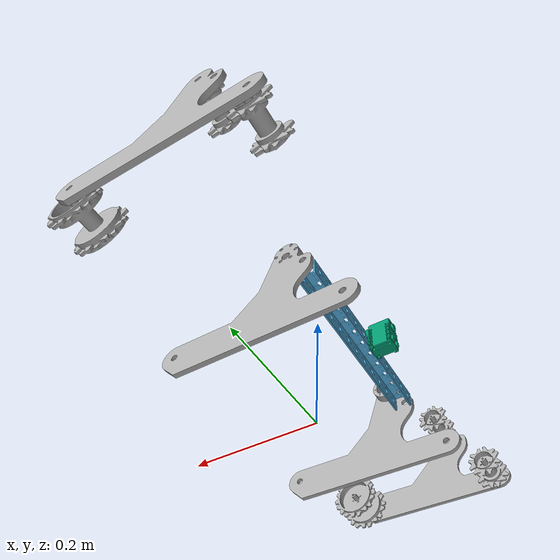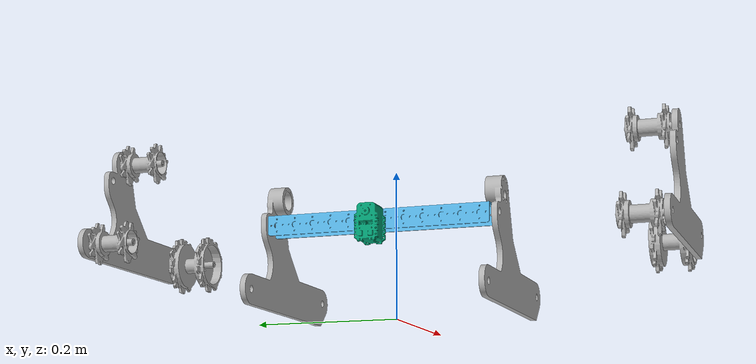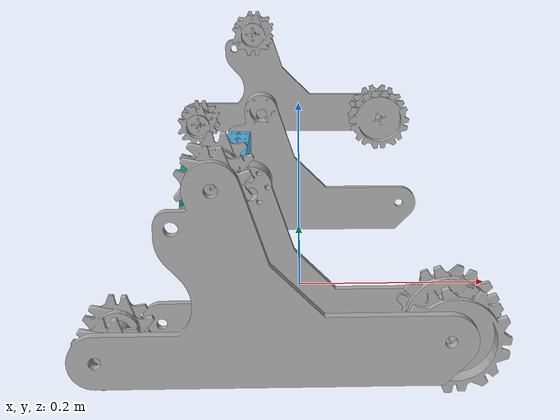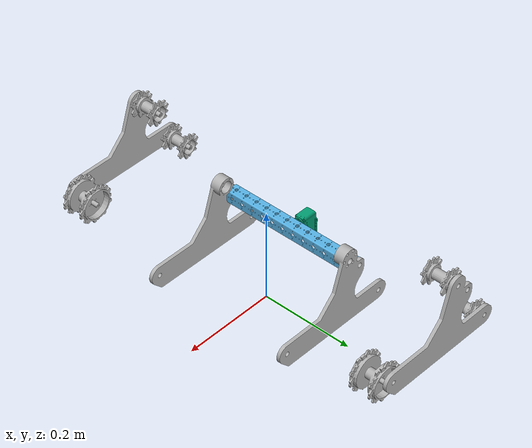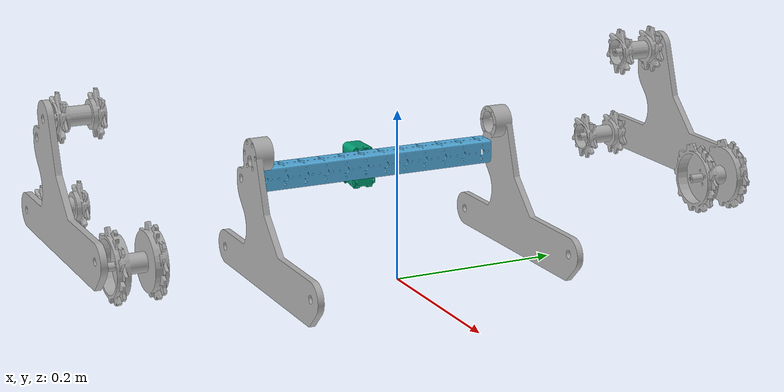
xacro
<?xml version="1.0" ?>
<robot name="aaly" xmlns:xacro="http://ros.org/wiki/xacro">

  <joint name="fixed" type="floating">
      <parent link="world"/>
      <child link="aaly__base_link"/>
  </joint>

  <joint name="aaly__j1" type="revolute">
    <parent link="aaly__base_link"/>
    <child link="aaly__motor1"/>
    <origin rpy="0 0 0" xyz="-0.107 0.0 0.12427"/>
    <axis xyz="1 0 0"/>

    <limit effort="1.5" velocity="1" lower="0" upper="5.235987755982989"/>

    <dynamics damping="5" friction="0.1"/>
  </joint>

  <joint name="aaly__Left_Track_Side_joint" type="fixed">
    <parent link="aaly__base_link"/>
    <child link="aaly__Left_Side_Track_Support"/>
    <origin rpy="0 0 0" xyz="-0.01373 -0.15812 0.06562"/>
    <axis xyz="0 0 0"/>
    <limit effort="0" lower="0" upper="0" velocity="0"/>
  </joint>

  <joint name="aaly__Right_Track_Side_joint" type="fixed">
    <parent link="aaly__base_link"/>
    <child link="aaly__Right_Side_Track_Support"/>
    <origin rpy="0 0 0" xyz="-0.01373 0.15812 0.07062"/>
    <axis xyz="0 0 0"/>
    <limit effort="0" lower="0" upper="0" velocity="0"/>
  </joint>

  <joint name="aaly__drum_joint1" type="continuous">
    <parent link="aaly__Left_Side_Track_Support"/>
    <child link="aaly__drum1"/>
    <origin rpy="1.57079632679 0 0" xyz="-0.1228385 -0.19612 0.030"/>
    <axis xyz="0 1 0"/>
  </joint>

  <joint name="aaly__drum_joint2" type="continuous">
    <parent link="aaly__Right_Side_Track_Support"/>
    <child link="aaly__drum2"/>
    <origin rpy="1.57079632679 0 0" xyz="-0.1228385 0.19612 0.030"/>
    <axis xyz="0 1 0"/>
    <limit effort="0" lower="-1e+16" upper="1e+16" velocity="2"/>
  </joint>

  <joint name="aaly__drum_joint3" type="continuous">
    <parent link="aaly__Left_Side_Track_Support"/>
    <child link="aaly__drum3"/>
    <origin rpy="1.57079632679 0 0" xyz="0.1248385 -0.19612 0.037625"/>
    <axis xyz="0 1 0"/>
    <limit effort="0" lower="-1e+16" upper="1e+16" velocity="2"/>
  </joint>

  <joint name="aaly__drum_joint4" type="continuous">
    <parent link="aaly__Right_Side_Track_Support"/>
    <child link="aaly__drum4"/>
    <origin rpy="1.57079632679 0 0" xyz="0.1248385 0.19612 0.037625"/>
    <axis xyz="0 1 0"/>
    <limit effort="0" lower="-1e+16" upper="1e+16" velocity="2"/>
  </joint>

  <joint name="aaly__drum_joint5" type="continuous">
    <parent link="aaly__Left_Side_Track_Support"/>
    <child link="aaly__drum5"/>
    <origin rpy="1.57079632679 0 0" xyz="-0.0460507 -0.19612 0.154342"/>
    <axis xyz="0 1 0"/>
    <limit effort="0" lower="-1e+16" upper="1e+16" velocity="2"/>
  </joint>

  <joint name="aaly__drum_joint6" type="continuous">
    <parent link="aaly__Right_Side_Track_Support"/>
    <child link="aaly__drum6"/>
    <origin rpy="1.57079632679 0 0" xyz="-0.0460507 0.19612 0.154342"/>
    <axis xyz="0 1 0"/>
    <limit effort="0" lower="-1e+16" upper="1e+16" velocity="2"/>
  </joint>

  <joint name="aaly__Left_Side_Track_Cover_joint" type="fixed">
    <parent link="aaly__Left_Side_Track_Support"/>
    <child link="aaly__Left_Side_Track_Cover"/>
    <origin rpy="0 0 0" xyz="-0.0134385 -0.23112 0.061125"/>
    <axis xyz="0 0 0"/>
    <limit effort="0" lower="0" upper="0" velocity="0"/>
  </joint>

  <joint name="aaly__Right_Side_Track_Cover_joint" type="fixed">
    <parent link="aaly__Right_Side_Track_Support"/>
    <child link="aaly__Right_Side_Track_Cover"/>
    <origin rpy="0 0 0" xyz="-0.0134385 0.23112 0.061125"/>
    <axis xyz="0 0 0"/>
    <limit effort="0" lower="0" upper="0" velocity="0"/>
  </joint>

  <!-- Used for fixing robot to Gazebo 'base_link' -->
  <link name="world"/>

  <link name="aaly__base_link">
    <inertial>
      <mass value="0.36"/>
      <origin rpy="0 0 0" xyz="0 0 0"/>
      <inertia ixx="0.0028086383999999997" ixy="0.0" ixz="0.0" iyy="4.3094400000000005e-05" iyz="0.0" izz="0.0028086383999999997"/>
    </inertial>
    <collision name="aaly__base_link_collision">
      <origin rpy="0 0 0" xyz="-0.07 0 0.12427"/>
      <geometry>
        <box size="0.026988 0.3000 0.026988"/>
      </geometry>
    </collision>
    <visual name="aaly__base_link_visual">
      <origin rpy="0 0 0" xyz="-0.07 0 0.12427"/>
      <geometry>
        <mesh filename="package://aaly_urdf/meshes/Horizontal_Support_Bar_ASB-512.dae" scale="1.0 1.0 1.0"/>
      </geometry>
    </visual>
  </link>

  <link name="aaly__motor1">
    <inertial>
        <mass value="0.05" />
        <inertia ixx="0.04" ixy="0.0" ixz="0.0" iyy="0.04" iyz="0.0" izz="0.04"/>
    </inertial>
    <collision name="aaly__motor1_collision">
      <origin rpy="0 0 0" xyz="0 0 0"/>
      <geometry>
        <box size="0.04 0.032 0.050"/>
      </geometry>
    </collision>
    <visual name="aaly__motor1_visual">
      <origin rpy="0 0 0" xyz="0 0 0"/>
      <geometry>
        <mesh filename="package://aaly_urdf/meshes/AX12-A_origin_same_as_center_of_mass.stl" scale="1.0 1.0 1.0"/>
      </geometry>
    </visual>
  </link>

  <link name="aaly__Left_Side_Track_Support">
    <inertial>
      <mass value="0.01"/>
      <origin rpy="0 0 0" xyz="0 0 0"/>
      <inertia ixx="0.001" ixy="0" ixz="0" iyy="0.001" iyz="0" izz="0.001"/>
    </inertial>
    <collision name="aaly__Left_Side_Track_Support_collision">
      <origin rpy="0 0 0" xyz="0 0 0.015"/>
      <geometry>
        <mesh filename="package://aaly_urdf/meshes/Track_Support_Collision_Mesh.dae" scale="1.0 1.0 1.0"/>
      </geometry>
    </collision>
    <visual name="aaly__Left_Side_Track_Support_visual">
      <origin rpy="0 0 0" xyz="0 0 0"/>
      <geometry>
        <mesh filename="package://aaly_urdf/meshes/Track_Support_Left_Side.dae" scale="1.0 1.0 1.0"/>
      </geometry>
    </visual>
  </link>

  <link name="aaly__Right_Side_Track_Support">
    <inertial>
      <mass value="0.01"/>
      <origin rpy="0 0 0" xyz="0 0 0"/>
      <inertia ixx="0.001" ixy="0" ixz="0" iyy="0.001" iyz="0" izz="0.001"/>
    </inertial>
    <collision name="aaly__Right_Side_Track_Support_collision">
      <origin rpy="0 0 0" xyz="0 0 0.015"/>
      <geometry>
        <mesh filename="package://aaly_urdf/meshes/Track_Support_Collision_Mesh.dae" scale="1.0 1.0 1.0"/>
      </geometry>
    </collision>
    <visual name="aaly__Left_Side_Track_Support_visual">
      <origin rpy="0 0 0" xyz="0 0 0"/>
      <geometry>
        <mesh filename="package://aaly_urdf/meshes/Track_Support_Right_Side.dae" scale="1.0 1.0 1.0"/>
      </geometry>
    </visual>
  </link>

  <link name="aaly__drum1">
    <inertial>
      <mass value="0.1"/>
      <origin rpy="0 0 0" xyz="0 0 0"/>
      <inertia ixx="4.0003370625000006e-05" ixy="0.0" ixz="0.0" iyy="4.0003370625000006e-05" iyz="0.0" izz="3.624778125000001e-05"/>
    </inertial>
    <collision name="aaly__drum1_collision">
      <origin rpy="0 0 0" xyz="0 0 0"/>
      <geometry>
        <cylinder length="0.05124" radius="0.026925"/>
      </geometry>
    </collision>
    <visual name="aaly__drum1_visual">
      <origin rpy="0 0 0" xyz="0 0 0"/>
      <geometry>
        <mesh filename="package://aaly_urdf/meshes/Lynx_Sproket6in_Hub13.dae" scale="1.0 1.0 1.0"/>
      </geometry>
    </visual>
  </link>

  <link name="aaly__drum2">
    <inertial>
      <mass value="0.1"/>
      <origin rpy="0 0 0" xyz="0 0 0"/>
      <inertia ixx="4.0003370625000006e-05" ixy="0.0" ixz="0.0" iyy="4.0003370625000006e-05" iyz="0.0" izz="3.624778125000001e-05"/>
    </inertial>
    <collision name="aaly__drum2_collision">
      <origin rpy="0 0 0" xyz="0 0 0"/>
      <geometry>
        <cylinder length="0.05124" radius="0.026525"/>
      </geometry>
    </collision>
    <visual name="aaly__drum2_visual">
      <origin rpy="0 0 0" xyz="0 0 0"/>
      <geometry>
        <mesh filename="package://aaly_urdf/meshes/Lynx_Sproket6in_Hub13.dae" scale="1.0 1.0 1.0"/>
      </geometry>
    </visual>
  </link>

  <link name="aaly__drum3">
    <inertial>
      <mass value="0.15"/>
      <origin rpy="0 0 0" xyz="0 0 0"/>
      <inertia ixx="5.5414245624999996e-05" ixy="0.0" ixz="0.0" iyy="5.5414245624999996e-05" iyz="0.0" izz="0.000100604296875"/>
    </inertial>
    <collision name="aaly__drum3_collision">
      <origin rpy="0 0 0" xyz="0 0 0"/>
      <geometry>
        <cylinder length="0.05124" radius="0.035625"/>
      </geometry>
    </collision>
    <visual name="aaly__drum3_visual">
      <origin rpy="0 0 0" xyz="0 0 0"/>
      <geometry>
        <mesh filename="package://aaly_urdf/meshes/Lynx_Sproket9in_Hub13.dae" scale="1.0 1.0 1.0"/>
      </geometry>
    </visual>
  </link>

  <link name="aaly__drum4">
    <inertial>
      <mass value="0.15"/>
      <origin rpy="0 0 0" xyz="0 0 0"/>
      <inertia ixx="5.5414245624999996e-05" ixy="0.0" ixz="0.0" iyy="5.5414245624999996e-05" iyz="0.0" izz="0.000100604296875"/>
    </inertial>
    <collision name="aaly__drum4_collision">
      <origin rpy="0 0 0" xyz="0 0 0"/>
      <geometry>
        <cylinder length="0.05124" radius="0.035625"/>
      </geometry>
    </collision>
    <visual name="aaly__drum4_visual">
      <origin rpy="0 0 0" xyz="0 0 0"/>
      <geometry>
        <mesh filename="package://aaly_urdf/meshes/Lynx_Sproket9in_Hub13.dae" scale="1.0 1.0 1.0"/>
      </geometry>
    </visual>
  </link>

  <link name="aaly__drum5">
    <inertial>
      <mass value="0.1"/>
      <origin rpy="0 0 0" xyz="0 0 0"/>
      <inertia ixx="4.0003370625000006e-05" ixy="0.0" ixz="0.0" iyy="4.0003370625000006e-05" iyz="0.0" izz="3.624778125000001e-05"/>
    </inertial>
    <collision name="aaly__drum5_collision">
      <origin rpy="0 0 0" xyz="0 0 0"/>
      <geometry>
        <cylinder length="0.05124" radius="0.026525"/>
      </geometry>
    </collision>
    <visual name="aaly__drum5_visual">
      <origin rpy="0 0 0" xyz="0 0 0"/>
      <geometry>
        <mesh filename="package://aaly_urdf/meshes/Lynx_Sproket6in_Hub13.dae" scale="1.0 1.0 1.0"/>
      </geometry>
    </visual>
  </link>

  <link name="aaly__drum6">
    <inertial>
      <mass value="0.1"/>
      <origin rpy="0 0 0" xyz="0 0 0"/>
      <inertia ixx="4.0003370625000006e-05" ixy="0.0" ixz="0.0" iyy="4.0003370625000006e-05" iyz="0.0" izz="3.624778125000001e-05"/>
    </inertial>
    <collision name="aaly__drum6_collision">
      <origin rpy="0 0 0" xyz="0 0 0"/>
      <geometry>
        <cylinder length="0.05124" radius="0.026525"/>
      </geometry>
    </collision>
    <visual name="aaly__drum6_visual">
      <origin rpy="0 0 0" xyz="0 0 0"/>
      <geometry>
        <mesh filename="package://aaly_urdf/meshes/Lynx_Sproket6in_Hub13.dae" scale="1.0 1.0 1.0"/>
      </geometry>
    </visual>
  </link>

  <link name="aaly__Left_Side_Track_Cover">
    <inertial>
      <mass value="0.01"/>
      <origin rpy="0 0 0" xyz="0 0 0"/>
      <inertia ixx="0.001" ixy="0" ixz="0" iyy="0.001" iyz="0" izz="0.001"/>
    </inertial>
    <collision name="aaly__Left_Side_Track_Cover_collision">
      <origin rpy="0 0 0" xyz="0 0 0.015"/>
      <geometry>
        <mesh filename="package://aaly_urdf/meshes/Track_Support_Collision_Mesh.dae" scale="1.0 1.0 1.0"/>
      </geometry>
    </collision>
    <visual name="aaly__Left_Side_Track_Cover_visual">
      <origin rpy="0 0 0" xyz="0 0 0"/>
      <geometry>
        <mesh filename="package://aaly_urdf/meshes/Track_Support_Cover_Side.dae" scale="1.0 1.0 1.0"/>
      </geometry>
    </visual>
  </link>

  <link name="aaly__Right_Side_Track_Cover">
    <inertial>
      <mass value="0.01"/>
      <origin rpy="0 0 0" xyz="0 0 0"/>
      <inertia ixx="0.001" ixy="0" ixz="0" iyy="0.001" iyz="0" izz="0.001"/>
    </inertial>
    <collision name="aaly__Right_Side_Track_Cover_collision">
      <origin rpy="0 0 0" xyz="0 0 0.015"/>
      <geometry>
        <mesh filename="package://aaly_urdf/meshes/Track_Support_Collision_Mesh.dae" scale="1.0 1.0 1.0"/>
      </geometry>
    </collision>
    <visual name="aaly__Right_Side_Track_Cover_visual">
      <origin rpy="0 0 0" xyz="0 0 0"/>
      <geometry>
        <mesh filename="package://aaly_urdf/meshes/Track_Support_Cover_Side.dae" scale="1.0 1.0 1.0"/>
      </geometry>
    </visual>
  </link>

    <!-- Replaced Gazebo's differential drive plugin with the
         ROS-friendly variant -->
    <gazebo>
      <plugin name="gazebo_ros_control" filename="libgazebo_ros_control.so">
        <robotNamespace>/aaly_robot</robotNamespace>
      </plugin>
    </gazebo>

  <transmission name="tran1">
    <type>transmission_interface/SimpleTransmission</type>
    <joint name="aaly__j1">
      <hardwareInterface>hardware_interface/PositionJointInterface</hardwareInterface>
    </joint>
    <actuator name="aaly__motor1">
      <hardwareInterface>hardware_interface/PositionJointInterface</hardwareInterface>
      <mechanicalReduction>1</mechanicalReduction>
    </actuator>
  </transmission>

  <transmission name="left_wheel_transmission">
  <type>transmission_interface/SimpleTransmission</type>
  <joint name="aaly__drum_joint5">
    <hardwareInterface>hardware_interface/VelocityJointInterface</hardwareInterface>
  </joint>
  <actuator name="aaly__drum5">
    <mechanicalReduction>1</mechanicalReduction>
    <hardwareInterface>VelocityJointInterface</hardwareInterface>
  </actuator>
</transmission>

<transmission name="right_wheel_transmission">
  <type>transmission_interface/SimpleTransmission</type>
  <joint name="aaly__drum_joint6">
    <hardwareInterface>hardware_interface/VelocityJointInterface</hardwareInterface>
  </joint>
  <actuator name="aaly__drum6">
    <mechanicalReduction>1</mechanicalReduction>
    <hardwareInterface>VelocityJointInterface</hardwareInterface>
  </actuator>
</transmission>

</robot>
